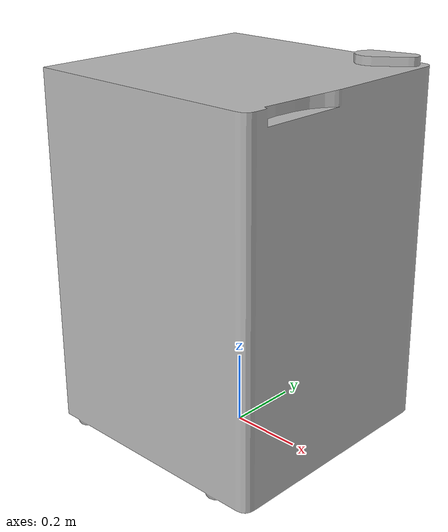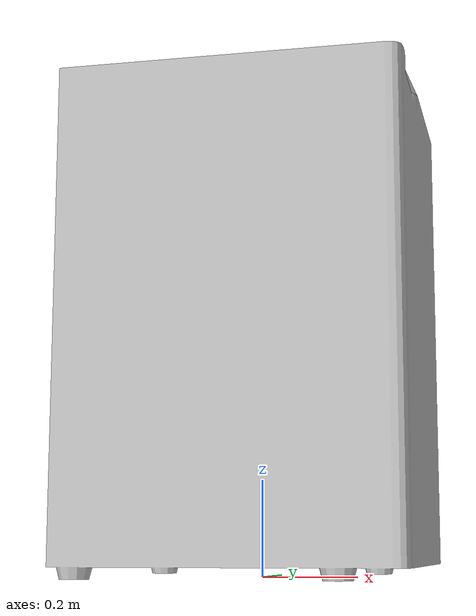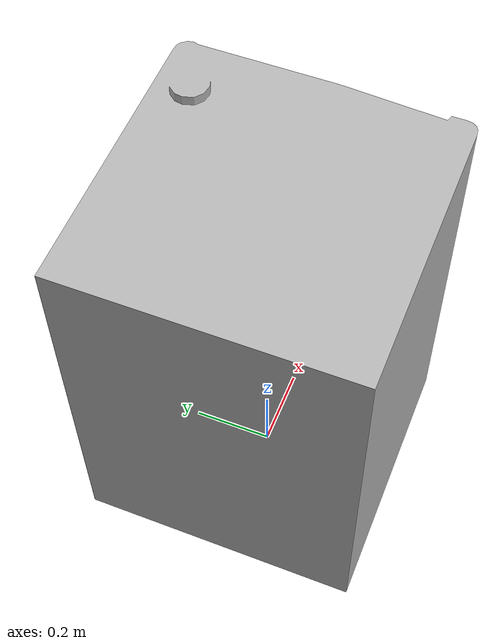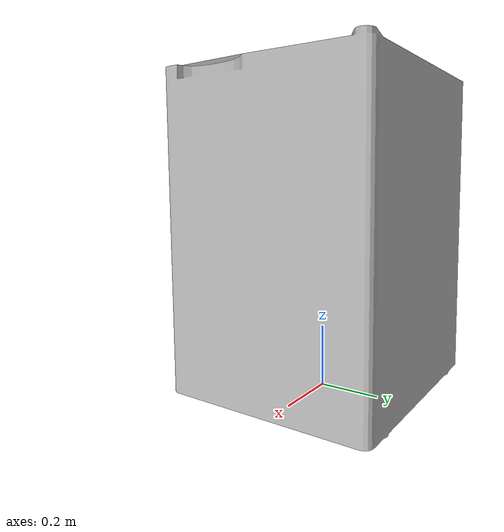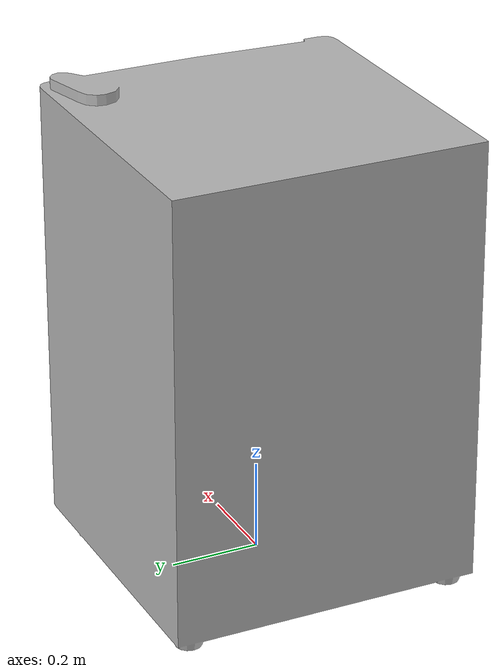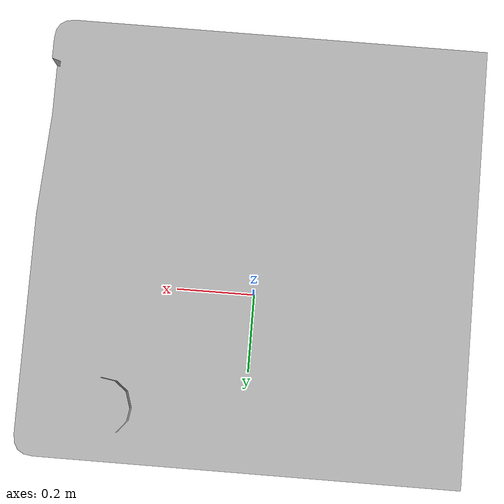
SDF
<sdf version="1.5">
  <model name="mini_fridge">
    <static>true</static>
    <link name="link">

      <pose>0 0 0 0 0 1.57079632679</pose>
      <collision name="collision">
        <pose>-0.002041 0.002974 0.524481 0 0 0</pose>
        <geometry>
          <box>
            <size>0.6997290 0.708116 1.067160</size>
          </box>
        </geometry>
      </collision>
      <visual name="visual">
        <geometry>
          <mesh>
            <uri>model://mini_fridge/meshes/mini_fridge.obj</uri>
            <scale>0.02 0.02 0.02</scale>
          </mesh>
        </geometry>
      </visual>
    </link>
  </model>
</sdf>
